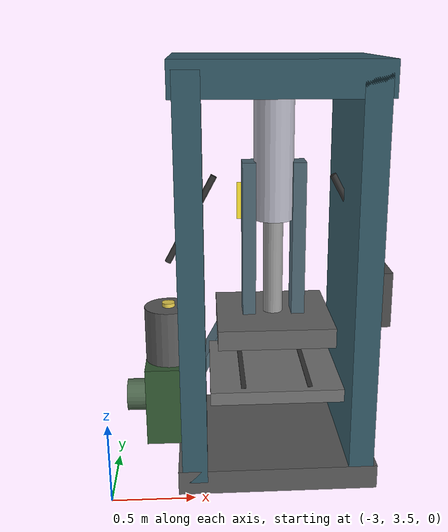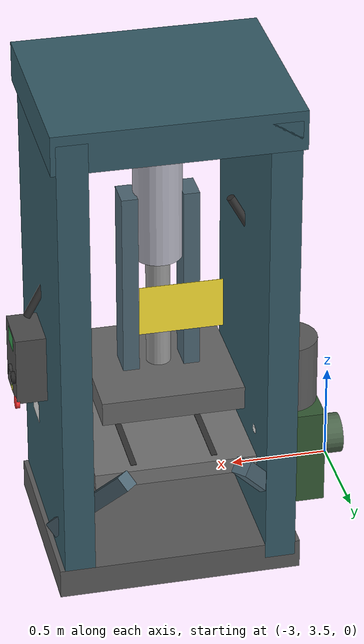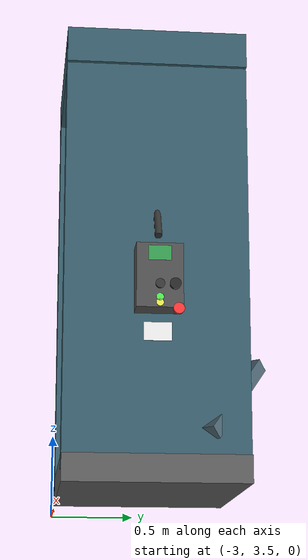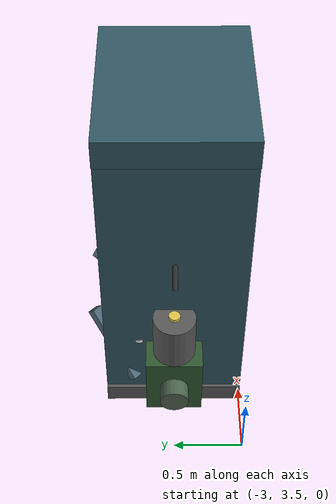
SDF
<?xml version="1.0"?>
<sdf version="1.6">
  <model name="hydraulic_press">
    <pose>-2 4 0.1 0 0 0</pose>
    <static>false</static>

    <!-- BASE E STRUTTURA -->
    <link name="base">
      <pose>0 0 0 0 0 0</pose>
      <inertial>
        <mass>500.0</mass>
        <inertia>
          <ixx>50.0</ixx>
          <iyy>50.0</iyy>
          <izz>80.0</izz>
        </inertia>
      </inertial>

      <!-- Basamento -->
      <visual name="base_platform">
        <geometry>
          <box>
            <size>1.2 1.0 0.15</size>
          </box>
        </geometry>
        <material>
          <ambient>0.25 0.25 0.25 1</ambient>
          <diffuse>0.35 0.35 0.35 1</diffuse>
        </material>
      </visual>

      <!-- Colonne laterali (frame C) -->
      <visual name="column_left">
        <pose>-0.5 0 1.2 0 0 0</pose>
        <geometry>
          <box>
            <size>0.15 1.0 2.4</size>
          </box>
        </geometry>
        <material>
          <ambient>0.15 0.25 0.3 1</ambient>
          <diffuse>0.2 0.35 0.4 1</diffuse>
        </material>
      </visual>

      <visual name="column_right">
        <pose>0.5 0 1.2 0 0 0</pose>
        <geometry>
          <box>
            <size>0.15 1.0 2.4</size>
          </box>
        </geometry>
        <material>
          <ambient>0.15 0.25 0.3 1</ambient>
          <diffuse>0.2 0.35 0.4 1</diffuse>
        </material>
      </visual>

      <!-- Traversa superiore -->
      <visual name="top_beam">
        <pose>0 0 2.35 0 0 0</pose>
        <geometry>
          <box>
            <size>1.2 1.0 0.2</size>
          </box>
        </geometry>
        <material>
          <ambient>0.15 0.25 0.3 1</ambient>
          <diffuse>0.2 0.35 0.4 1</diffuse>
        </material>
      </visual>

      <!-- Rinforzi angolari -->
      <visual name="brace_fl">
        <pose>-0.43 0.43 0.4 0 0.7854 0.7854</pose>
        <geometry>
          <box>
            <size>0.08 0.08 0.6</size>
          </box>
        </geometry>
        <material>
          <ambient>0.2 0.3 0.35 1</ambient>
          <diffuse>0.3 0.4 0.45 1</diffuse>
        </material>
      </visual>

      <visual name="brace_fr">
        <pose>0.43 0.43 0.4 0 -0.7854 -0.7854</pose>
        <geometry>
          <box>
            <size>0.08 0.08 0.6</size>
          </box>
        </geometry>
        <material>
          <ambient>0.2 0.3 0.35 1</ambient>
          <diffuse>0.3 0.4 0.45 1</diffuse>
        </material>
      </visual>

      <!-- Piano di lavoro fisso -->
      <visual name="work_table">
        <pose>0 0 0.5 0 0 0</pose>
        <geometry>
          <box>
            <size>0.8 0.8 0.08</size>
          </box>
        </geometry>
        <material>
          <ambient>0.35 0.35 0.35 1</ambient>
          <diffuse>0.45 0.45 0.45 1</diffuse>
        </material>
      </visual>

      <!-- Scanalature sul piano -->
      <visual name="slot1">
        <pose>-0.2 0 0.54 0 0 0</pose>
        <geometry>
          <box>
            <size>0.03 0.7 0.005</size>
          </box>
        </geometry>
        <material>
          <ambient>0.15 0.15 0.15 1</ambient>
          <diffuse>0.2 0.2 0.2 1</diffuse>
        </material>
      </visual>

      <visual name="slot2">
        <pose>0.2 0 0.54 0 0 0</pose>
        <geometry>
          <box>
            <size>0.03 0.7 0.005</size>
          </box>
        </geometry>
        <material>
          <ambient>0.15 0.15 0.15 1</ambient>
          <diffuse>0.2 0.2 0.2 1</diffuse>
        </material>
      </visual>

      <!-- Cilindro idraulico principale -->
      <visual name="hydraulic_cylinder">
        <pose>0 0 1.9 0 0 0</pose>
        <geometry>
          <cylinder>
            <radius>0.12</radius>
            <length>0.8</length>
          </cylinder>
        </geometry>
        <material>
          <ambient>0.6 0.6 0.65 1</ambient>
          <diffuse>0.7 0.7 0.75 1</diffuse>
        </material>
      </visual>

      <!-- Stelo del pistone -->
      <visual name="piston_rod">
        <pose>0 0 1.25 0 0 0</pose>
        <geometry>
          <cylinder>
            <radius>0.06</radius>
            <length>0.7</length>
          </cylinder>
        </geometry>
        <material>
          <ambient>0.5 0.5 0.5 1</ambient>
          <diffuse>0.6 0.6 0.6 1</diffuse>
          <emissive>0.05 0.05 0.05 1</emissive>
        </material>
      </visual>

      <!-- Testa del pistone (parte mobile) -->
      <visual name="ram_head">
        <pose>0 0 0.85 0 0 0</pose>
        <geometry>
          <box>
            <size>0.7 0.7 0.12</size>
          </box>
        </geometry>
        <material>
          <ambient>0.3 0.3 0.3 1</ambient>
          <diffuse>0.4 0.4 0.4 1</diffuse>
        </material>
      </visual>

      <!-- Piastra superiore di pressione -->
      <visual name="pressure_plate">
        <pose>0 0 0.79 0 0 0</pose>
        <geometry>
          <box>
            <size>0.6 0.6 0.04</size>
          </box>
        </geometry>
        <material>
          <ambient>0.5 0.5 0.5 1</ambient>
          <diffuse>0.6 0.6 0.6 1</diffuse>
        </material>
      </visual>

      <!-- Guide laterali per lo stelo -->
      <visual name="guide_left">
        <pose>-0.15 0 1.35 0 0 0</pose>
        <geometry>
          <box>
            <size>0.08 0.15 1.0</size>
          </box>
        </geometry>
        <material>
          <ambient>0.2 0.3 0.35 1</ambient>
          <diffuse>0.3 0.4 0.45 1</diffuse>
        </material>
      </visual>

      <visual name="guide_right">
        <pose>0.15 0 1.35 0 0 0</pose>
        <geometry>
          <box>
            <size>0.08 0.15 1.0</size>
          </box>
        </geometry>
        <material>
          <ambient>0.2 0.3 0.35 1</ambient>
          <diffuse>0.3 0.4 0.45 1</diffuse>
        </material>
      </visual>

      <!-- Centralina idraulica -->
      <visual name="hydraulic_pump">
        <pose>-0.65 0 0.35 0 0 0</pose>
        <geometry>
          <box>
            <size>0.3 0.4 0.5</size>
          </box>
        </geometry>
        <material>
          <ambient>0.15 0.25 0.15 1</ambient>
          <diffuse>0.2 0.35 0.2 1</diffuse>
        </material>
      </visual>

      <!-- Motore elettrico della pompa -->
      <visual name="pump_motor">
        <pose>-0.8 0 0.35 0 1.5708 0</pose>
        <geometry>
          <cylinder>
            <radius>0.1</radius>
            <length>0.25</length>
          </cylinder>
        </geometry>
        <material>
          <ambient>0.2 0.3 0.2 1</ambient>
          <diffuse>0.3 0.4 0.3 1</diffuse>
        </material>
      </visual>

      <!-- Serbatoio olio -->
      <visual name="oil_tank">
        <pose>-0.65 0 0.75 0 0 0</pose>
        <geometry>
          <cylinder>
            <radius>0.15</radius>
            <length>0.4</length>
          </cylinder>
        </geometry>
        <material>
          <ambient>0.25 0.25 0.25 1</ambient>
          <diffuse>0.35 0.35 0.35 1</diffuse>
        </material>
      </visual>

      <!-- Tappo serbatoio -->
      <visual name="oil_cap">
        <pose>-0.65 0 0.96 0 0 0</pose>
        <geometry>
          <cylinder>
            <radius>0.04</radius>
            <length>0.03</length>
          </cylinder>
        </geometry>
        <material>
          <ambient>0.8 0.7 0.2 1</ambient>
          <diffuse>0.9 0.8 0.3 1</diffuse>
        </material>
      </visual>

      <!-- Tubi idraulici -->
      <visual name="hose1">
        <pose>-0.5 0 1.5 0 0.5 0</pose>
        <geometry>
          <cylinder>
            <radius>0.02</radius>
            <length>0.6</length>
          </cylinder>
        </geometry>
        <material>
          <ambient>0.15 0.15 0.15 1</ambient>
          <diffuse>0.2 0.2 0.2 1</diffuse>
        </material>
      </visual>

      <visual name="hose2">
        <pose>0.5 0 1.5 0 -0.5 0</pose>
        <geometry>
          <cylinder>
            <radius>0.02</radius>
            <length>0.6</length>
          </cylinder>
        </geometry>
        <material>
          <ambient>0.15 0.15 0.15 1</ambient>
          <diffuse>0.2 0.2 0.2 1</diffuse>
        </material>
      </visual>

      <!-- Pannello di controllo -->
      <visual name="control_box">
        <pose>0.65 0 1.0 0 0 0</pose>
        <geometry>
          <box>
            <size>0.15 0.25 0.35</size>
          </box>
        </geometry>
        <material>
          <ambient>0.2 0.2 0.2 1</ambient>
          <diffuse>0.3 0.3 0.3 1</diffuse>
        </material>
      </visual>

      <!-- Display digitale -->
      <visual name="pressure_display">
        <pose>0.725 0 1.12 0 0 0</pose>
        <geometry>
          <box>
            <size>0.001 0.12 0.08</size>
          </box>
        </geometry>
        <material>
          <ambient>0.1 0.5 0.2 1</ambient>
          <diffuse>0.2 0.6 0.3 1</diffuse>
          <emissive>0.1 0.4 0.2 1</emissive>
        </material>
      </visual>

      <!-- Selettore modalità -->
      <visual name="mode_selector">
        <pose>0.72 0 0.95 0 1.5708 0</pose>
        <geometry>
          <cylinder>
            <radius>0.025</radius>
            <length>0.04</length>
          </cylinder>
        </geometry>
        <material>
          <ambient>0.15 0.15 0.15 1</ambient>
          <diffuse>0.2 0.2 0.2 1</diffuse>
        </material>
      </visual>

      <!-- Manopola pressione -->
      <visual name="pressure_knob">
        <pose>0.72 0.08 0.95 0 1.5708 0</pose>
        <geometry>
          <cylinder>
            <radius>0.03</radius>
            <length>0.05</length>
          </cylinder>
        </geometry>
        <material>
          <ambient>0.1 0.1 0.1 1</ambient>
          <diffuse>0.15 0.15 0.15 1</diffuse>
        </material>
      </visual>

      <!-- Pulsanti -->
      <visual name="button_up">
        <pose>0.72 0 0.88 0 1.5708 0</pose>
        <geometry>
          <cylinder>
            <radius>0.02</radius>
            <length>0.015</length>
          </cylinder>
        </geometry>
        <material>
          <ambient>0.2 0.8 0.2 1</ambient>
          <diffuse>0.3 0.9 0.3 1</diffuse>
          <emissive>0.1 0.3 0.1 1</emissive>
        </material>
      </visual>

      <visual name="button_down">
        <pose>0.72 0 0.85 0 1.5708 0</pose>
        <geometry>
          <cylinder>
            <radius>0.02</radius>
            <length>0.015</length>
          </cylinder>
        </geometry>
        <material>
          <ambient>0.8 0.8 0.2 1</ambient>
          <diffuse>0.9 0.9 0.3 1</diffuse>
          <emissive>0.3 0.3 0.1 1</emissive>
        </material>
      </visual>

      <visual name="button_emergency">
        <pose>0.72 0.1 0.82 0 1.5708 0</pose>
        <geometry>
          <cylinder>
            <radius>0.03</radius>
            <length>0.02</length>
          </cylinder>
        </geometry>
        <material>
          <ambient>0.9 0.1 0.1 1</ambient>
          <diffuse>1.0 0.2 0.2 1</diffuse>
          <emissive>0.4 0.1 0.1 1</emissive>
        </material>
      </visual>

      <!-- Manometro -->
      <visual name="pressure_gauge">
        <pose>-0.5 0.25 0.6 0 0 0</pose>
        <geometry>
          <cylinder>
            <radius>0.08</radius>
            <length>0.03</length>
          </cylinder>
        </geometry>
        <material>
          <ambient>0.9 0.9 0.9 1</ambient>
          <diffuse>0.95 0.95 0.95 1</diffuse>
        </material>
      </visual>

      <visual name="gauge_face">
        <pose>-0.485 0.25 0.6 0 1.5708 0</pose>
        <geometry>
          <cylinder>
            <radius>0.06</radius>
            <length>0.005</length>
          </cylinder>
        </geometry>
        <material>
          <ambient>1.0 1.0 1.0 1</ambient>
          <diffuse>1.0 1.0 1.0 1</diffuse>
        </material>
      </visual>

      <!-- Lancetta manometro -->
      <visual name="gauge_needle">
        <pose>-0.48 0.25 0.6 0 1.5708 0.785</pose>
        <geometry>
          <box>
            <size>0.001 0.04 0.01</size>
          </box>
        </geometry>
        <material>
          <ambient>0.9 0.1 0.1 1</ambient>
          <diffuse>1.0 0.2 0.2 1</diffuse>
        </material>
      </visual>

      <!-- Cartello di sicurezza -->
      <visual name="safety_sign">
        <pose>0 0.51 1.5 0 0 0</pose>
        <geometry>
          <box>
            <size>0.4 0.001 0.25</size>
          </box>
        </geometry>
        <material>
          <ambient>1.0 0.8 0.0 1</ambient>
          <diffuse>1.0 0.9 0.2 1</diffuse>
        </material>
      </visual>

      <!-- Targhetta dati tecnici -->
      <visual name="nameplate">
        <pose>0.61 0 0.72 0 0 0</pose>
        <geometry>
          <box>
            <size>0.001 0.15 0.1</size>
          </box>
        </geometry>
        <material>
          <ambient>0.85 0.85 0.85 1</ambient>
          <diffuse>0.9 0.9 0.9 1</diffuse>
        </material>
      </visual>

      <!-- Collision semplificata -->
      <collision name="base_collision">
        <geometry>
          <box>
            <size>1.2 1.0 0.15</size>
          </box>
        </geometry>
      </collision>

      <collision name="frame_collision">
        <pose>0 0 1.2 0 0 0</pose>
        <geometry>
          <box>
            <size>1.2 1.0 2.4</size>
          </box>
        </geometry>
      </collision>

      <collision name="table_collision">
        <pose>0 0 0.5 0 0 0</pose>
        <geometry>
          <box>
            <size>0.8 0.8 0.08</size>
          </box>
        </geometry>
      </collision>
    </link>
  </model>
</sdf>
